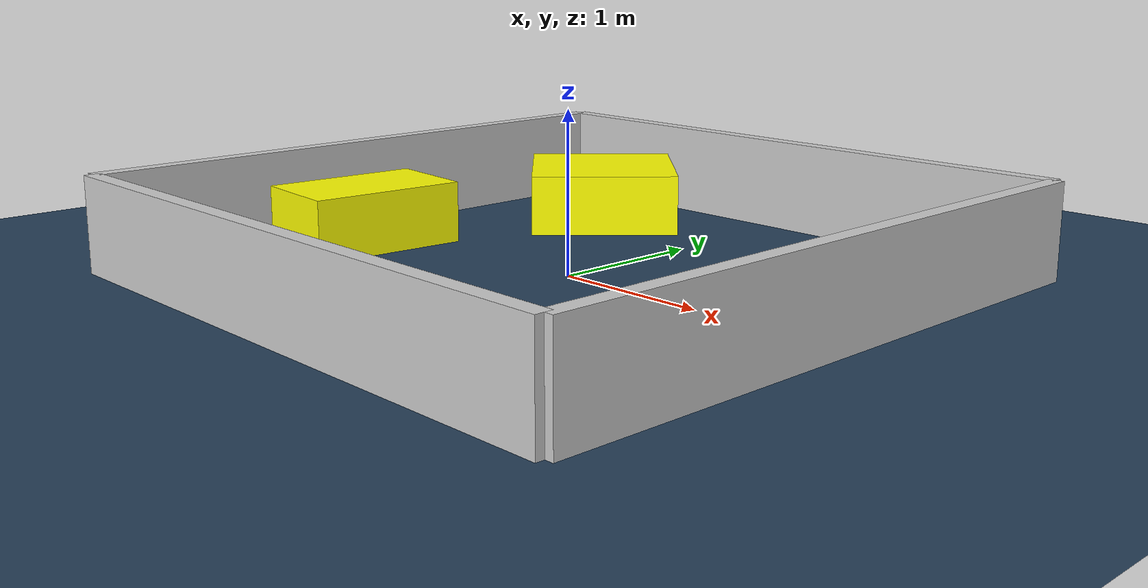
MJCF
<?xml version="1.0" ?>
<mujoco model="generated_environment">
  <option timestep="0.01" integrator="RK4" cone="elliptic"/>
  <default>
    <geom density="1"/>
  </default>
  <asset>
    <texture builtin="gradient" height="3072" rgb1="0.3 0.5 0.7" rgb2="0 0 0" type="skybox" width="512"/>
    <texture builtin="checker" height="300" mark="edge" markrgb="0.8 0.8 0.8" name="groundplane" rgb1="0.2 0.3 0.4" rgb2="0.1 0.2 0.3" type="2d" width="300"/>
    <material name="groundplane" reflectance="0.2" texrepeat="5 5" texture="groundplane" texuniform="true"/>
    <material name="robot" rgba="0.0 1.0 0.0 1"/>
  </asset>
  <worldbody>
    <light dir="0 0 -1" directional="true" pos="0 0 1.5"/>
    <geom condim="4" friction="1.0 0.005 0.001" material="groundplane" name="floor" size="0 0 0.05" type="plane"/>
    <body name="walls">
      <geom name="wall_1" condim="4" pos="-2.0 0.0 0.3" rgba="0.800000011920929 0.800000011920929 0.800000011920929 1.0" size="0.05 2.0 0.3" type="box"/>
      <geom name="wall_2" condim="4" pos="2.0 0.0 0.3" rgba="0.800000011920929 0.800000011920929 0.800000011920929 1.0" size="0.05 2.0 0.3" type="box"/>
      <geom name="wall_3" condim="4" pos="0.0 -2.0 0.3" rgba="0.800000011920929 0.800000011920929 0.800000011920929 1.0" size="2.0 0.05 0.3" type="box"/>
      <geom name="wall_4" condim="4" pos="0.0 2.0 0.3" rgba="0.800000011920929 0.800000011920929 0.800000011920929 1.0" size="2.0 0.05 0.3" type="box"/>
    </body>
    <body name="robot">
      <joint name="joint_x" type="slide" pos="0 0 0" axis="1 0 0"/>
      <joint name="joint_y" type="slide" pos="0 0 0" axis="0 1 0"/>
      <geom name="robot" type="sphere" pos="1.0621550863650215 0.0014530189841261976 0.2" size="0.05" mass="5." friction="1.0 0.005 0.0001" condim="4"/>
      <site name="sensor_ball"/>
    </body>
    <body name="obstacle_1_movable">
      <geom name="obstacle_1_movable" condim="4" pos="-1.5225369372708262 -0.39055570704023723 0.2" euler="0 0 355.2686589175073" friction="1.0 0.005 0.001" rgba="1 1 0 1" size="0.3161763416415599 0.5129075343228082 0.2" type="box" mass="0.1"/>
      <joint type="free"/>
    </body>
    <body name="obstacle_2_movable">
      <geom name="obstacle_2_movable" condim="4" pos="-0.9752979541223012 1.2426790230228089 0.2" euler="0 0 137.27796470289718" friction="1.0 0.005 0.001" rgba="1 1 0 1" size="0.46473142288528263 0.49160059683955926 0.2" type="box" mass="0.1"/>
      <joint type="free"/>
    </body>
  </worldbody>
  <actuator>
    <motor name="actuator_x" joint="joint_x" gear="1" ctrlrange="-1 1"/>
    <motor name="actuator_y" joint="joint_y" gear="1" ctrlrange="-1 1"/>
  </actuator>
</mujoco>
